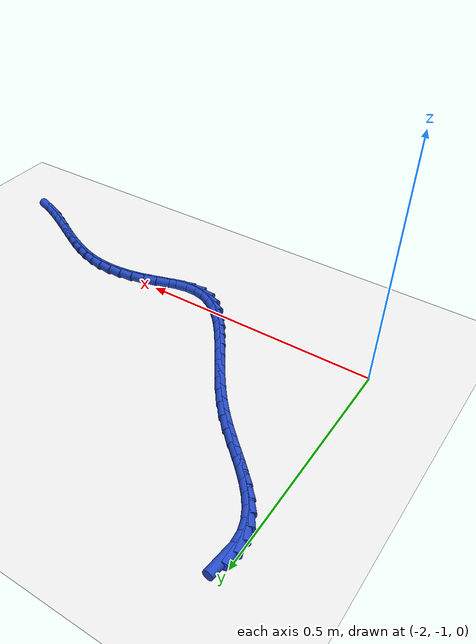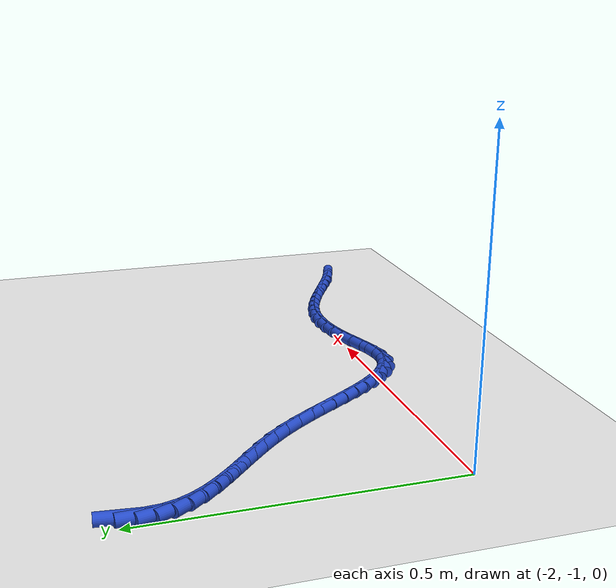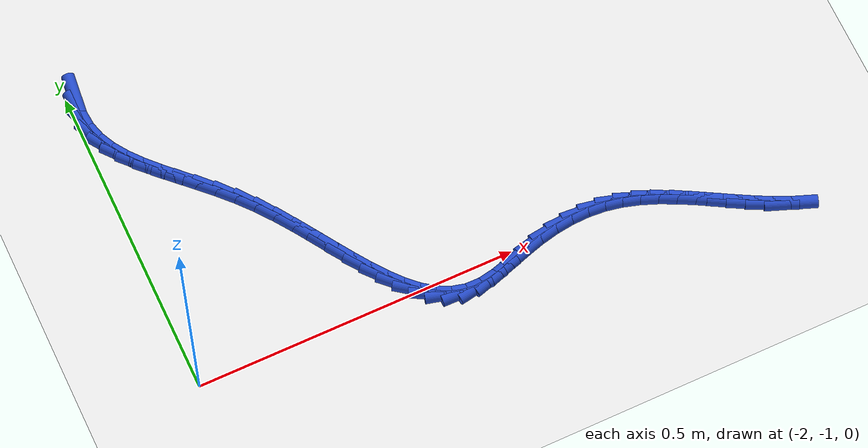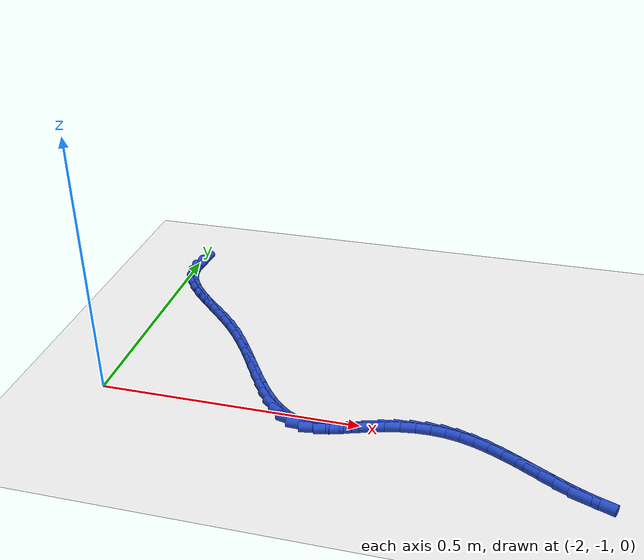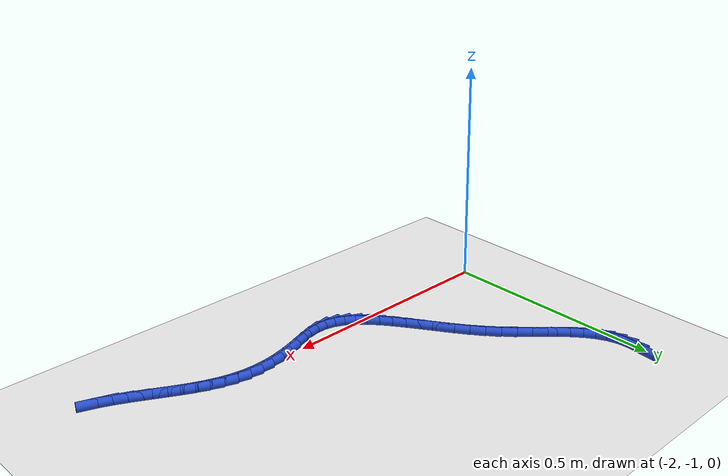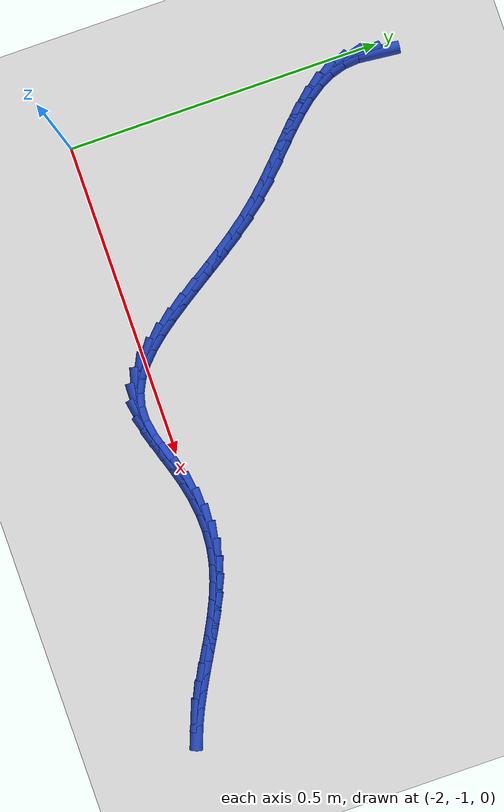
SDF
<sdf version="1.6">
 <world name="default">
  <model name="ground_plane">
   <static>1</static>
   <link name="link">
    <collision name="collision">
     <geometry><plane><normal>0 0 1</normal><size>100 100</size></plane></geometry>
     <surface><friction><ode><mu>100</mu><mu2>50</mu2></ode></friction></surface>
    </collision>
    <visual name="visual">
     <cast_shadows>0</cast_shadows>
     <geometry><plane><normal>0 0 1</normal><size>100 100</size></plane></geometry>
     <material>
      <script><uri>file://media/materials/scripts/gazebo.material</uri><name>Gazebo/WhiteGlow</name></script>
     </material>
    </visual>
   </link>
  </model>
  <model name="line">
   <link name="link_154">
    <pose>-1.9865982498682833 -0.508566695096353 0.01 0 1.57 1.469051213621667</pose>
    <collision name="collision">
     <geometry><cylinder><radius>0.01</radius><length>0.08</length></cylinder></geometry>
    </collision>
    <visual name="visual">
     <material>
      <script><name>Gazebo/Blue</name><uri>file://media/materials/scripts/gazebo.material</uri></script>
     </material>
     <geometry><cylinder><radius>0.01</radius><length>0.08</length></cylinder></geometry>
    </visual>
   </link>
   <link name="link_155">
    <pose>-1.9892750840410158 -0.5347850635793004 0.01 0 1.57 -1.4908145462533657</pose>
    <collision name="collision">
     <geometry><cylinder><radius>0.01</radius><length>0.08</length></cylinder></geometry>
    </collision>
    <visual name="visual">
     <material>
      <script><name>Gazebo/Blue</name><uri>file://media/materials/scripts/gazebo.material</uri></script>
     </material>
     <geometry><cylinder><radius>0.01</radius><length>0.08</length></cylinder></geometry>
    </visual>
   </link>
   <link name="link_156">
    <pose>-1.9872974567002604 -0.5594582892937092 0.01 0 1.57 -1.2885251846808297</pose>
    <collision name="collision">
     <geometry><cylinder><radius>0.01</radius><length>0.08</length></cylinder></geometry>
    </collision>
    <visual name="visual">
     <material>
      <script><name>Gazebo/Blue</name><uri>file://media/materials/scripts/gazebo.material</uri></script>
     </material>
     <geometry><cylinder><radius>0.01</radius><length>0.08</length></cylinder></geometry>
    </visual>
   </link>
   <link name="link_157">
    <pose>-1.9805619367275278 -0.582683029040876 0.01 0 1.57 -1.114039073174763</pose>
    <collision name="collision">
     <geometry><cylinder><radius>0.01</radius><length>0.08</length></cylinder></geometry>
    </collision>
    <visual name="visual">
     <material>
      <script><name>Gazebo/Blue</name><uri>file://media/materials/scripts/gazebo.material</uri></script>
     </material>
     <geometry><cylinder><radius>0.01</radius><length>0.08</length></cylinder></geometry>
    </visual>
   </link>
   <link name="link_158">
    <pose>-1.969702425093154 -0.6047814156823401 0.01 0 1.57 -0.9778860178764615</pose>
    <collision name="collision">
     <geometry><cylinder><radius>0.01</radius><length>0.08</length></cylinder></geometry>
    </collision>
    <visual name="visual">
     <material>
      <script><name>Gazebo/Blue</name><uri>file://media/materials/scripts/gazebo.material</uri></script>
     </material>
     <geometry><cylinder><radius>0.01</radius><length>0.08</length></cylinder></geometry>
    </visual>
   </link>
   <link name="link_159">
    <pose>-1.9553545161462818 -0.626076099914666 0.01 0 1.57 -0.8801545242788396</pose>
    <collision name="collision">
     <geometry><cylinder><radius>0.01</radius><length>0.08</length></cylinder></geometry>
    </collision>
    <visual name="visual">
     <material>
      <script><name>Gazebo/Blue</name><uri>file://media/materials/scripts/gazebo.material</uri></script>
     </material>
     <geometry><cylinder><radius>0.01</radius><length>0.08</length></cylinder></geometry>
    </visual>
   </link>
   <link name="link_160">
    <pose>-1.938153804236053 -0.6468897324344184 0.01 0 1.57 -0.8162646649362355</pose>
    <collision name="collision">
     <geometry><cylinder><radius>0.01</radius><length>0.08</length></cylinder></geometry>
    </collision>
    <visual name="visual">
     <material>
      <script><name>Gazebo/Blue</name><uri>file://media/materials/scripts/gazebo.material</uri></script>
     </material>
     <geometry><cylinder><radius>0.01</radius><length>0.08</length></cylinder></geometry>
    </visual>
   </link>
   <link name="link_161">
    <pose>-1.9187358837116109 -0.6675449639381624 0.01 0 1.57 -0.7810926461957631</pose>
    <collision name="collision">
     <geometry><cylinder><radius>0.01</radius><length>0.08</length></cylinder></geometry>
    </collision>
    <visual name="visual">
     <material>
      <script><name>Gazebo/Blue</name><uri>file://media/materials/scripts/gazebo.material</uri></script>
     </material>
     <geometry><cylinder><radius>0.01</radius><length>0.08</length></cylinder></geometry>
    </visual>
   </link>
   <link name="link_162">
    <pose>-1.8977363489220969 -0.6883644451224623 0.01 0 1.57 -0.770621330812863</pose>
    <collision name="collision">
     <geometry><cylinder><radius>0.01</radius><length>0.08</length></cylinder></geometry>
    </collision>
    <visual name="visual">
     <material>
      <script><name>Gazebo/Blue</name><uri>file://media/materials/scripts/gazebo.material</uri></script>
     </material>
     <geometry><cylinder><radius>0.01</radius><length>0.08</length></cylinder></geometry>
    </visual>
   </link>
   <link name="link_163">
    <pose>-1.8757907942166538 -0.7096708266838828 0.01 0 1.57 -0.7822419512147536</pose>
    <collision name="collision">
     <geometry><cylinder><radius>0.01</radius><length>0.08</length></cylinder></geometry>
    </collision>
    <visual name="visual">
     <material>
      <script><name>Gazebo/Blue</name><uri>file://media/materials/scripts/gazebo.material</uri></script>
     </material>
     <geometry><cylinder><radius>0.01</radius><length>0.08</length></cylinder></geometry>
    </visual>
   </link>
   <link name="link_164">
    <pose>-1.8535348139444237 -0.7317867593189887 0.01 0 1.57 -0.8145477984309993</pose>
    <collision name="collision">
     <geometry><cylinder><radius>0.01</radius><length>0.08</length></cylinder></geometry>
    </collision>
    <visual name="visual">
     <material>
      <script><name>Gazebo/Blue</name><uri>file://media/materials/scripts/gazebo.material</uri></script>
     </material>
     <geometry><cylinder><radius>0.01</radius><length>0.08</length></cylinder></geometry>
    </visual>
   </link>
   <link name="link_165">
    <pose>-1.8316040024545481 -0.7550348937243453 0.01 0 1.57 -0.8665849566052056</pose>
    <collision name="collision">
     <geometry><cylinder><radius>0.01</radius><length>0.08</length></cylinder></geometry>
    </collision>
    <visual name="visual">
     <material>
      <script><name>Gazebo/Blue</name><uri>file://media/materials/scripts/gazebo.material</uri></script>
     </material>
     <geometry><cylinder><radius>0.01</radius><length>0.08</length></cylinder></geometry>
    </visual>
   </link>
   <link name="link_166">
    <pose>-1.8106255685657358 -0.7797295476392176 0.01 0 1.57 -0.9229399318919097</pose>
    <collision name="collision">
     <geometry><cylinder><radius>0.01</radius><length>0.08</length></cylinder></geometry>
    </collision>
    <visual name="visual">
     <material>
      <script><name>Gazebo/Blue</name><uri>file://media/materials/scripts/gazebo.material</uri></script>
     </material>
     <geometry><cylinder><radius>0.01</radius><length>0.08</length></cylinder></geometry>
    </visual>
   </link>
   <link name="link_167">
    <pose>-1.7908709186674956 -0.8058314670792734 0.01 0 1.57 -0.9639399382917812</pose>
    <collision name="collision">
     <geometry><cylinder><radius>0.01</radius><length>0.08</length></cylinder></geometry>
    </collision>
    <visual name="visual">
     <material>
      <script><name>Gazebo/Blue</name><uri>file://media/materials/scripts/gazebo.material</uri></script>
     </material>
     <geometry><cylinder><radius>0.01</radius><length>0.08</length></cylinder></geometry>
    </visual>
   </link>
   <link name="link_168">
    <pose>-1.7721312307101627 -0.8328241804162699 0.01 0 1.57 -0.9892716235765089</pose>
    <collision name="collision">
     <geometry><cylinder><radius>0.01</radius><length>0.08</length></cylinder></geometry>
    </collision>
    <visual name="visual">
     <material>
      <script><name>Gazebo/Blue</name><uri>file://media/materials/scripts/gazebo.material</uri></script>
     </material>
     <geometry><cylinder><radius>0.01</radius><length>0.08</length></cylinder></geometry>
    </visual>
   </link>
   <link name="link_169">
    <pose>-1.7541637082411037 -0.8601574546217302 0.01 0 1.57 -0.9994183574526436</pose>
    <collision name="collision">
     <geometry><cylinder><radius>0.01</radius><length>0.08</length></cylinder></geometry>
    </collision>
    <visual name="visual">
     <material>
      <script><name>Gazebo/Blue</name><uri>file://media/materials/scripts/gazebo.material</uri></script>
     </material>
     <geometry><cylinder><radius>0.01</radius><length>0.08</length></cylinder></geometry>
    </visual>
   </link>
   <link name="link_170">
    <pose>-1.7367255548076843 -0.8872810566671767 0.01 0 1.57 -0.9940164942990696</pose>
    <collision name="collision">
     <geometry><cylinder><radius>0.01</radius><length>0.08</length></cylinder></geometry>
    </collision>
    <visual name="visual">
     <material>
      <script><name>Gazebo/Blue</name><uri>file://media/materials/scripts/gazebo.material</uri></script>
     </material>
     <geometry><cylinder><radius>0.01</radius><length>0.08</length></cylinder></geometry>
    </visual>
   </link>
   <link name="link_171">
    <pose>-1.719573973957269 -0.9136447535241323 0.01 0 1.57 -0.9716738836614515</pose>
    <collision name="collision">
     <geometry><cylinder><radius>0.01</radius><length>0.08</length></cylinder></geometry>
    </collision>
    <visual name="visual">
     <material>
      <script><name>Gazebo/Blue</name><uri>file://media/materials/scripts/gazebo.material</uri></script>
     </material>
     <geometry><cylinder><radius>0.01</radius><length>0.08</length></cylinder></geometry>
    </visual>
   </link>
   <link name="link_172">
    <pose>-1.7024661692372247 -0.9386983121641205 0.01 0 1.57 -0.929729757138908</pose>
    <collision name="collision">
     <geometry><cylinder><radius>0.01</radius><length>0.08</length></cylinder></geometry>
    </collision>
    <visual name="visual">
     <material>
      <script><name>Gazebo/Blue</name><uri>file://media/materials/scripts/gazebo.material</uri></script>
     </material>
     <geometry><cylinder><radius>0.01</radius><length>0.08</length></cylinder></geometry>
    </visual>
   </link>
   <link name="link_173">
    <pose>-1.6851593441949173 -0.9618914995586625 0.01 0 1.57 -0.8639758475399438</pose>
    <collision name="collision">
     <geometry><cylinder><radius>0.01</radius><length>0.08</length></cylinder></geometry>
    </collision>
    <visual name="visual">
     <material>
      <script><name>Gazebo/Blue</name><uri>file://media/materials/scripts/gazebo.material</uri></script>
     </material>
     <geometry><cylinder><radius>0.01</radius><length>0.08</length></cylinder></geometry>
    </visual>
   </link>
   <link name="link_174">
    <pose>-1.667410702377711 -0.9826740826792815 0.01 0 1.57 -0.7685328694513145</pose>
    <collision name="collision">
     <geometry><cylinder><radius>0.01</radius><length>0.08</length></cylinder></geometry>
    </collision>
    <visual name="visual">
     <material>
      <script><name>Gazebo/Blue</name><uri>file://media/materials/scripts/gazebo.material</uri></script>
     </material>
     <geometry><cylinder><radius>0.01</radius><length>0.08</length></cylinder></geometry>
    </visual>
   </link>
   <link name="link_175">
    <pose>-1.6489774473329726 -1.0004958284975003 0.01 0 1.57 -0.6365288901499933</pose>
    <collision name="collision">
     <geometry><cylinder><radius>0.01</radius><length>0.08</length></cylinder></geometry>
    </collision>
    <visual name="visual">
     <material>
      <script><name>Gazebo/Blue</name><uri>file://media/materials/scripts/gazebo.material</uri></script>
     </material>
     <geometry><cylinder><radius>0.01</radius><length>0.08</length></cylinder></geometry>
    </visual>
   </link>
   <link name="link_176">
    <pose>-1.6296167826080676 -1.0148065039848422 0.01 0 1.57 -0.46302149518009805</pose>
    <collision name="collision">
     <geometry><cylinder><radius>0.01</radius><length>0.08</length></cylinder></geometry>
    </collision>
    <visual name="visual">
     <material>
      <script><name>Gazebo/Blue</name><uri>file://media/materials/scripts/gazebo.material</uri></script>
     </material>
     <geometry><cylinder><radius>0.01</radius><length>0.08</length></cylinder></geometry>
    </visual>
   </link>
   <link name="link_177">
    <pose>-1.6090859117503618 -1.0250558761128294 0.01 0 1.57 -0.251481599674521</pose>
    <collision name="collision">
     <geometry><cylinder><radius>0.01</radius><length>0.08</length></cylinder></geometry>
    </collision>
    <visual name="visual">
     <material>
      <script><name>Gazebo/Blue</name><uri>file://media/materials/scripts/gazebo.material</uri></script>
     </material>
     <geometry><cylinder><radius>0.01</radius><length>0.08</length></cylinder></geometry>
    </visual>
   </link>
   <link name="link_178">
    <pose>-1.5871420383072201 -1.0306937118529844 0.01 0 1.57 -0.02042572298438827</pose>
    <collision name="collision">
     <geometry><cylinder><radius>0.01</radius><length>0.08</length></cylinder></geometry>
    </collision>
    <visual name="visual">
     <material>
      <script><name>Gazebo/Blue</name><uri>file://media/materials/scripts/gazebo.material</uri></script>
     </material>
     <geometry><cylinder><radius>0.01</radius><length>0.08</length></cylinder></geometry>
    </visual>
   </link>
   <link name="link_179">
    <pose>-1.563544035907747 -1.0311757851568057 0.01 0 1.57 0.17421368494697112</pose>
    <collision name="collision">
     <geometry><cylinder><radius>0.01</radius><length>0.08</length></cylinder></geometry>
    </collision>
    <visual name="visual">
     <material>
      <script><name>Gazebo/Blue</name><uri>file://media/materials/scripts/gazebo.material</uri></script>
     </material>
     <geometry><cylinder><radius>0.01</radius><length>0.08</length></cylinder></geometry>
    </visual>
   </link>
   <link name="link_180">
    <pose>-1.5382645155392791 -1.0267266443423395 0.01 0 1.57 0.2800071636315573</pose>
    <collision name="collision">
     <geometry><cylinder><radius>0.01</radius><length>0.08</length></cylinder></geometry>
    </collision>
    <visual name="visual">
     <material>
      <script><name>Gazebo/Blue</name><uri>file://media/materials/scripts/gazebo.material</uri></script>
     </material>
     <geometry><cylinder><radius>0.01</radius><length>0.08</length></cylinder></geometry>
    </visual>
   </link>
   <link name="link_181">
    <pose>-1.5116976204970143 -1.0190870126988243 0.01 0 1.57 0.31434496951959306</pose>
    <collision name="collision">
     <geometry><cylinder><radius>0.01</radius><length>0.08</length></cylinder></geometry>
    </collision>
    <visual name="visual">
     <material>
      <script><name>Gazebo/Blue</name><uri>file://media/materials/scripts/gazebo.material</uri></script>
     </material>
     <geometry><cylinder><radius>0.01</radius><length>0.08</length></cylinder></geometry>
    </visual>
   </link>
   <link name="link_182">
    <pose>-1.4842868340011557 -1.0101750802433693 0.01 0 1.57 0.2889225576146965</pose>
    <collision name="collision">
     <geometry><cylinder><radius>0.01</radius><length>0.08</length></cylinder></geometry>
    </collision>
    <visual name="visual">
     <material>
      <script><name>Gazebo/Blue</name><uri>file://media/materials/scripts/gazebo.material</uri></script>
     </material>
     <geometry><cylinder><radius>0.01</radius><length>0.08</length></cylinder></geometry>
    </visual>
   </link>
   <link name="link_183">
    <pose>-1.4564755393805406 -1.0019084573037396 0.01 0 1.57 0.21625914824774883</pose>
    <collision name="collision">
     <geometry><cylinder><radius>0.01</radius><length>0.08</length></cylinder></geometry>
    </collision>
    <visual name="visual">
     <material>
      <script><name>Gazebo/Blue</name><uri>file://media/materials/scripts/gazebo.material</uri></script>
     </material>
     <geometry><cylinder><radius>0.01</radius><length>0.08</length></cylinder></geometry>
    </visual>
   </link>
   <link name="link_184">
    <pose>-1.4286360403123595 -0.9957922649359703 0.01 0 1.57 0.12918617573227528</pose>
    <collision name="collision">
     <geometry><cylinder><radius>0.01</radius><length>0.08</length></cylinder></geometry>
    </collision>
    <visual name="visual">
     <material>
      <script><name>Gazebo/Blue</name><uri>file://media/materials/scripts/gazebo.material</uri></script>
     </material>
     <geometry><cylinder><radius>0.01</radius><length>0.08</length></cylinder></geometry>
    </visual>
   </link>
   <link name="link_185">
    <pose>-1.4009447615383577 -0.9921949000062372 0.01 0 1.57 0.03299057348866528</pose>
    <collision name="collision">
     <geometry><cylinder><radius>0.01</radius><length>0.08</length></cylinder></geometry>
    </collision>
    <visual name="visual">
     <material>
      <script><name>Gazebo/Blue</name><uri>file://media/materials/scripts/gazebo.material</uri></script>
     </material>
     <geometry><cylinder><radius>0.01</radius><length>0.08</length></cylinder></geometry>
    </visual>
   </link>
   <link name="link_186">
    <pose>-1.3735446752051428 -0.9912906273571919 0.01 0 1.57 -0.0726705205741024</pose>
    <collision name="collision">
     <geometry><cylinder><radius>0.01</radius><length>0.08</length></cylinder></geometry>
    </collision>
    <visual name="visual">
     <material>
      <script><name>Gazebo/Blue</name><uri>file://media/materials/scripts/gazebo.material</uri></script>
     </material>
     <geometry><cylinder><radius>0.01</radius><length>0.08</length></cylinder></geometry>
    </visual>
   </link>
   <link name="link_187">
    <pose>-1.3465787534593248 -0.9932537118314866 0.01 0 1.57 -0.18608040511002566</pose>
    <collision name="collision">
     <geometry><cylinder><radius>0.01</radius><length>0.08</length></cylinder></geometry>
    </collision>
    <visual name="visual">
     <material>
      <script><name>Gazebo/Blue</name><uri>file://media/materials/scripts/gazebo.material</uri></script>
     </material>
     <geometry><cylinder><radius>0.01</radius><length>0.08</length></cylinder></geometry>
    </visual>
   </link>
   <link name="link_188">
    <pose>-1.3201775724049878 -0.9982239535526491 0.01 0 1.57 -0.2903788553969582</pose>
    <collision name="collision">
     <geometry><cylinder><radius>0.01</radius><length>0.08</length></cylinder></geometry>
    </collision>
    <visual name="visual">
     <material>
      <script><name>Gazebo/Blue</name><uri>file://media/materials/scripts/gazebo.material</uri></script>
     </material>
     <geometry><cylinder><radius>0.01</radius><length>0.08</length></cylinder></geometry>
    </visual>
   </link>
   <link name="link_189">
    <pose>-1.2943302286106046 -1.0059477970673578 0.01 0 1.57 -0.37423607941776577</pose>
    <collision name="collision">
     <geometry><cylinder><radius>0.01</radius><length>0.08</length></cylinder></geometry>
    </collision>
    <visual name="visual">
     <material>
      <script><name>Gazebo/Blue</name><uri>file://media/materials/scripts/gazebo.material</uri></script>
     </material>
     <geometry><cylinder><radius>0.01</radius><length>0.08</length></cylinder></geometry>
    </visual>
   </link>
   <link name="link_190">
    <pose>-1.2689357724603825 -1.015921331500929 0.01 0 1.57 -0.4375484482176717</pose>
    <collision name="collision">
     <geometry><cylinder><radius>0.01</radius><length>0.08</length></cylinder></geometry>
    </collision>
    <visual name="visual">
     <material>
      <script><name>Gazebo/Blue</name><uri>file://media/materials/scripts/gazebo.material</uri></script>
     </material>
     <geometry><cylinder><radius>0.01</radius><length>0.08</length></cylinder></geometry>
    </visual>
   </link>
   <link name="link_191">
    <pose>-1.243891807915031 -1.0276366244871786 0.01 0 1.57 -0.4812721711296841</pose>
    <collision name="collision">
     <geometry><cylinder><radius>0.01</radius><length>0.08</length></cylinder></geometry>
    </collision>
    <visual name="visual">
     <material>
      <script><name>Gazebo/Blue</name><uri>file://media/materials/scripts/gazebo.material</uri></script>
     </material>
     <geometry><cylinder><radius>0.01</radius><length>0.08</length></cylinder></geometry>
    </visual>
   </link>
   <link name="link_192">
    <pose>-1.219095938935258 -1.0405857436599233 0.01 0 1.57 -0.5064930109108184</pose>
    <collision name="collision">
     <geometry><cylinder><radius>0.01</radius><length>0.08</length></cylinder></geometry>
    </collision>
    <visual name="visual">
     <material>
      <script><name>Gazebo/Blue</name><uri>file://media/materials/scripts/gazebo.material</uri></script>
     </material>
     <geometry><cylinder><radius>0.01</radius><length>0.08</length></cylinder></geometry>
    </visual>
   </link>
   <link name="link_193">
    <pose>-1.1944457694817743 -1.0542607566529796 0.01 0 1.57 -0.5139813680329276</pose>
    <collision name="collision">
     <geometry><cylinder><radius>0.01</radius><length>0.08</length></cylinder></geometry>
    </collision>
    <visual name="visual">
     <material>
      <script><name>Gazebo/Blue</name><uri>file://media/materials/scripts/gazebo.material</uri></script>
     </material>
     <geometry><cylinder><radius>0.01</radius><length>0.08</length></cylinder></geometry>
    </visual>
   </link>
   <link name="link_194">
    <pose>-1.1698389035152874 -1.0681537311001625 0.01 0 1.57 -0.5039856390365398</pose>
    <collision name="collision">
     <geometry><cylinder><radius>0.01</radius><length>0.08</length></cylinder></geometry>
    </collision>
    <visual name="visual">
     <material>
      <script><name>Gazebo/Blue</name><uri>file://media/materials/scripts/gazebo.material</uri></script>
     </material>
     <geometry><cylinder><radius>0.01</radius><length>0.08</length></cylinder></geometry>
    </visual>
   </link>
   <link name="link_195">
    <pose>-1.145172944996507 -1.0817567346352894 0.01 0 1.57 -0.4761790290867615</pose>
    <collision name="collision">
     <geometry><cylinder><radius>0.01</radius><length>0.08</length></cylinder></geometry>
    </collision>
    <visual name="visual">
     <material>
      <script><name>Gazebo/Blue</name><uri>file://media/materials/scripts/gazebo.material</uri></script>
     </material>
     <geometry><cylinder><radius>0.01</radius><length>0.08</length></cylinder></geometry>
    </visual>
   </link>
   <link name="link_196">
    <pose>-1.120345497886142 -1.0945618348921768 0.01 0 1.57 -0.42973167809761165</pose>
    <collision name="collision">
     <geometry><cylinder><radius>0.01</radius><length>0.08</length></cylinder></geometry>
    </collision>
    <visual name="visual">
     <material>
      <script><name>Gazebo/Blue</name><uri>file://media/materials/scripts/gazebo.material</uri></script>
     </material>
     <geometry><cylinder><radius>0.01</radius><length>0.08</length></cylinder></geometry>
    </visual>
   </link>
   <link name="link_197">
    <pose>-1.0952541661449016 -1.1060610995046405 0.01 0 1.57 -0.3635452474586517</pose>
    <collision name="collision">
     <geometry><cylinder><radius>0.01</radius><length>0.08</length></cylinder></geometry>
    </collision>
    <visual name="visual">
     <material>
      <script><name>Gazebo/Blue</name><uri>file://media/materials/scripts/gazebo.material</uri></script>
     </material>
     <geometry><cylinder><radius>0.01</radius><length>0.08</length></cylinder></geometry>
    </visual>
   </link>
  </model>
 </world>
</sdf>
